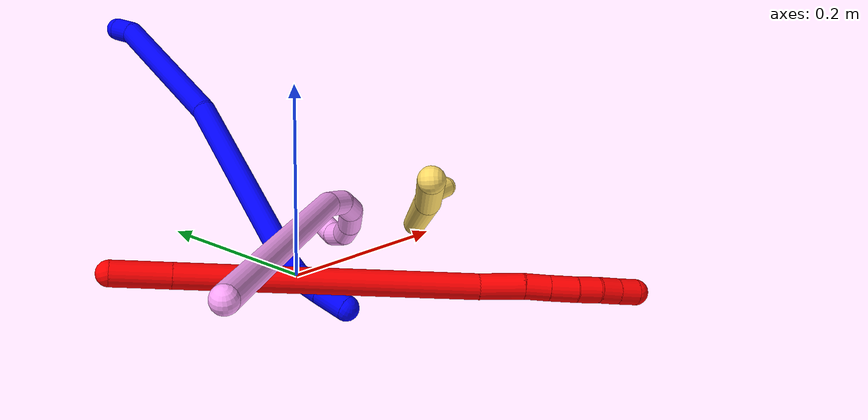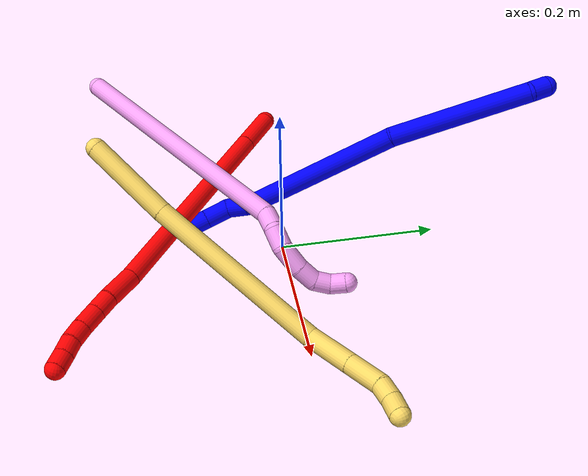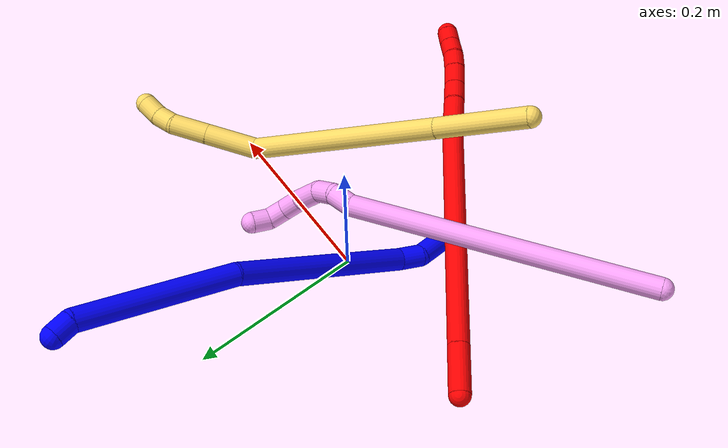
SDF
<sdf version="1.7">
 <world name="default">
  <model name="photoneo_s_sensor">
   <static>1</static>
   <pose>0 0 2 1.57079 1.57079 3.14159</pose>
   <link name="link">
    <inertial><mass>0.1</mass></inertial>
    <sensor name="sensor" type="depth">
     <update_rate>30</update_rate>
     <camera>
      <horizontal_fov>1.22</horizontal_fov>
      <image><width>1920</width><height>1200</height><format>B8G8R8</format></image>
      <clip><near>0.1</near><far>4</far></clip>
      <depth_camera><output>points</output></depth_camera>
     </camera>
     <plugin name="camera_plugin" filename="libgazebo_ros_depth_camera.so">
      <baseline>0.2</baseline>
      <alwaysOn>1</alwaysOn>
      <updateRate>0.0</updateRate>
      <cameraName>camera_ir</cameraName>
      <imageTopicName>/camera/color/image_raw</imageTopicName>
      <cameraInfoTopicName>/camera/color/camera_info</cameraInfoTopicName>
      <depthImageTopicName>/camera/depth/image_raw</depthImageTopicName>
      <depthImageCameraInfoTopicName>/camera/depth/camera_info</depthImageCameraInfoTopicName>
      <pointCloudTopicName>/camera/depth/points</pointCloudTopicName>
      <frameName>fr_optical</frameName>
      <pointCloudCutoff>0.1</pointCloudCutoff>
      <pointCloudCutoffMax>2.0</pointCloudCutoffMax>
      <distortionK1>0</distortionK1>
      <distortionK2>0</distortionK2>
      <distortionK3>0</distortionK3>
      <distortionT1>0</distortionT1>
      <distortionT2>0</distortionT2>
      <CxPrime>0</CxPrime>
      <Cx>0</Cx>
      <Cy>0</Cy>
      <focalLength>0</focalLength>
      <hackBaseline>0</hackBaseline>
     </plugin>
    </sensor>
   </link>
  </model>
  <model name="bin">
   <static>1</static>
   <link name="bottom">
    <collision name="collision-bottom">
     <pose>0 0 -0.01 0 -0 0</pose>
     <geometry><box><size>0.8 0.6 0.02</size></box></geometry>
     <surface>
      <friction><ode><mu>100</mu><mu2>100</mu2></ode></friction>
      <contact><collide_bitmask>65535</collide_bitmask></contact>
     </surface>
    </collision>
   </link>
   <link name="west_wall">
    <collision name="collision-west_wall">
     <pose>-0.41 0 0.1 0 -0 0</pose>
     <geometry><box><size>0.02 0.6 0.2</size></box></geometry>
     <surface>
      <friction><ode><mu>100</mu><mu2>100</mu2></ode></friction>
      <contact><collide_bitmask>65535</collide_bitmask></contact>
     </surface>
    </collision>
   </link>
   <link name="east_wall">
    <collision name="collision-east_wall">
     <pose>0.41 0 0.1 0 -0 0</pose>
     <geometry><box><size>0.02 0.6 0.2</size></box></geometry>
     <surface>
      <friction><ode><mu>100</mu><mu2>100</mu2></ode></friction>
      <contact><collide_bitmask>65535</collide_bitmask></contact>
     </surface>
    </collision>
   </link>
   <link name="south_wall">
    <collision name="collision-south_wall">
     <pose>0 -0.31 0.1 0 -0 0</pose>
     <geometry><box><size>0.8 0.02 0.2</size></box></geometry>
     <surface>
      <friction><ode><mu>100</mu><mu2>100</mu2></ode></friction>
      <contact><collide_bitmask>65535</collide_bitmask></contact>
     </surface>
    </collision>
   </link>
   <link name="north_wall">
    <collision name="collision-north_wall">
     <pose>0 0.31 0.1 0 -0 0</pose>
     <geometry><box><size>0.8 0.02 0.2</size></box></geometry>
     <surface>
      <friction><ode><mu>100</mu><mu2>100</mu2></ode></friction>
      <contact><collide_bitmask>65535</collide_bitmask></contact>
     </surface>
    </collision>
   </link>
  </model>
  <model name="1">
   <static>0</static>
   <link name="1">
    <collision name="collision-cylinder-e_1_1_4">
     <pose>-0.005863 -0.007229 -0.005889 2.25435 -0.561339 -1.09056</pose>
     <geometry><cylinder><radius>0.0125</radius><length>0.022029</length></cylinder></geometry>
     <surface>
      <friction><ode><mu>1.16</mu><mu2>1.16</mu2><slip1>0</slip1><slip2>0</slip2></ode></friction>
      <contact><ode><kp>1e+06</kp><kd>1</kd><max_vel>0</max_vel><min_depth>0.001</min_depth></ode></contact>
     </surface>
    </collision>
    <visual name="visual-cylinder-e_1_1_4">
     <pose>-0.005863 -0.007229 -0.005889 2.25435 -0.561339 -1.09056</pose>
     <geometry><cylinder><radius>0.0125</radius><length>0.022029</length></cylinder></geometry>
     <material><ambient>0 0 1 1</ambient></material>
    </visual>
    <collision name="collision-cylinder-e_2_4_5">
     <pose>-0.0304 -0.094036 -0.043164 1.94648 -0.214925 -0.314412</pose>
     <geometry><cylinder><radius>0.0125</radius><length>0.175115</length></cylinder></geometry>
     <surface>
      <friction><ode><mu>1.16</mu><mu2>1.16</mu2><slip1>0</slip1><slip2>0</slip2></ode></friction>
      <contact><ode><kp>1e+06</kp><kd>1</kd><max_vel>0</max_vel><min_depth>0.001</min_depth></ode></contact>
     </surface>
    </collision>
    <visual name="visual-cylinder-e_2_4_5">
     <pose>-0.0304 -0.094036 -0.043164 1.94648 -0.214925 -0.314412</pose>
     <geometry><cylinder><radius>0.0125</radius><length>0.175115</length></cylinder></geometry>
     <material><ambient>0 0 1 1</ambient></material>
    </visual>
    <collision name="collision-cylinder-e_3_5_6">
     <pose>-0.066142 -0.277912 -0.091804 1.73474 -0.16007 -0.18857</pose>
     <geometry><cylinder><radius>0.0125</radius><length>0.214171</length></cylinder></geometry>
     <surface>
      <friction><ode><mu>1.16</mu><mu2>1.16</mu2><slip1>0</slip1><slip2>0</slip2></ode></friction>
      <contact><ode><kp>1e+06</kp><kd>1</kd><max_vel>0</max_vel><min_depth>0.001</min_depth></ode></contact>
     </surface>
    </collision>
    <visual name="visual-cylinder-e_3_5_6">
     <pose>-0.066142 -0.277912 -0.091804 1.73474 -0.16007 -0.18857</pose>
     <geometry><cylinder><radius>0.0125</radius><length>0.214171</length></cylinder></geometry>
     <material><ambient>0 0 1 1</ambient></material>
    </visual>
    <collision name="collision-cylinder-e_4_6_7">
     <pose>-0.083749 -0.394369 -0.115076 2.0304 -0.039717 -0.063961</pose>
     <geometry><cylinder><radius>0.0125</radius><length>0.027154</length></cylinder></geometry>
     <surface>
      <friction><ode><mu>1.16</mu><mu2>1.16</mu2><slip1>0</slip1><slip2>0</slip2></ode></friction>
      <contact><ode><kp>1e+06</kp><kd>1</kd><max_vel>0</max_vel><min_depth>0.001</min_depth></ode></contact>
     </surface>
    </collision>
    <visual name="visual-cylinder-e_4_6_7">
     <pose>-0.083749 -0.394369 -0.115076 2.0304 -0.039717 -0.063961</pose>
     <geometry><cylinder><radius>0.0125</radius><length>0.027154</length></cylinder></geometry>
     <material><ambient>0 0 1 1</ambient></material>
    </visual>
    <collision name="collision-cylinder-e_5_7_8">
     <pose>-0.091835 -0.419054 -0.126596 1.98468 -0.504066 -0.751284</pose>
     <geometry><cylinder><radius>0.0125</radius><length>0.03125</length></cylinder></geometry>
     <surface>
      <friction><ode><mu>1.16</mu><mu2>1.16</mu2><slip1>0</slip1><slip2>0</slip2></ode></friction>
      <contact><ode><kp>1e+06</kp><kd>1</kd><max_vel>0</max_vel><min_depth>0.001</min_depth></ode></contact>
     </surface>
    </collision>
    <visual name="visual-cylinder-e_5_7_8">
     <pose>-0.091835 -0.419054 -0.126596 1.98468 -0.504066 -0.751284</pose>
     <geometry><cylinder><radius>0.0125</radius><length>0.03125</length></cylinder></geometry>
     <material><ambient>0 0 1 1</ambient></material>
    </visual>
    <collision name="collision-cylinder-e_6_8_2">
     <pose>-0.107004 -0.443444 -0.137612 2.00585 -0.527615 -0.800992</pose>
     <geometry><cylinder><radius>0.0125</radius><length>0.030282</length></cylinder></geometry>
     <surface>
      <friction><ode><mu>1.16</mu><mu2>1.16</mu2><slip1>0</slip1><slip2>0</slip2></ode></friction>
      <contact><ode><kp>1e+06</kp><kd>1</kd><max_vel>0</max_vel><min_depth>0.001</min_depth></ode></contact>
     </surface>
    </collision>
    <visual name="visual-cylinder-e_6_8_2">
     <pose>-0.107004 -0.443444 -0.137612 2.00585 -0.527615 -0.800992</pose>
     <geometry><cylinder><radius>0.0125</radius><length>0.030282</length></cylinder></geometry>
     <material><ambient>0 0 1 1</ambient></material>
    </visual>
    <collision name="collision-sphere-2">
     <pose>-0.114627 -0.455307 -0.143126 0 -0 0</pose>
     <geometry><sphere><radius>0.0125</radius></sphere></geometry>
     <surface>
      <friction><ode><mu>1.16</mu><mu2>1.16</mu2><slip1>0</slip1><slip2>0</slip2></ode></friction>
      <contact><ode><kp>1e+06</kp><kd>1</kd><max_vel>0</max_vel><min_depth>0.001</min_depth></ode></contact>
     </surface>
    </collision>
    <visual name="visual-sphere-2">
     <pose>-0.114627 -0.455307 -0.143126 0 -0 0</pose>
     <geometry><sphere><radius>0.0125</radius></sphere></geometry>
     <material><ambient>0 0 1 1</ambient></material>
    </visual>
    <collision name="collision-sphere-4">
     <pose>-0.011726 -0.014459 -0.011777 0 -0 0</pose>
     <geometry><sphere><radius>0.0125</radius></sphere></geometry>
     <surface>
      <friction><ode><mu>1.16</mu><mu2>1.16</mu2><slip1>0</slip1><slip2>0</slip2></ode></friction>
      <contact><ode><kp>1e+06</kp><kd>1</kd><max_vel>0</max_vel><min_depth>0.001</min_depth></ode></contact>
     </surface>
    </collision>
    <visual name="visual-sphere-4">
     <pose>-0.011726 -0.014459 -0.011777 0 -0 0</pose>
     <geometry><sphere><radius>0.0125</radius></sphere></geometry>
     <material><ambient>0 0 1 1</ambient></material>
    </visual>
    <collision name="collision-sphere-1">
     <geometry><sphere><radius>0.0125</radius></sphere></geometry>
     <surface>
      <friction><ode><mu>1.16</mu><mu2>1.16</mu2><slip1>0</slip1><slip2>0</slip2></ode></friction>
      <contact><ode><kp>1e+06</kp><kd>1</kd><max_vel>0</max_vel><min_depth>0.001</min_depth></ode></contact>
     </surface>
    </collision>
    <visual name="visual-sphere-1">
     <geometry><sphere><radius>0.0125</radius></sphere></geometry>
     <material><ambient>0 0 1 1</ambient></material>
    </visual>
    <collision name="collision-sphere-8">
     <pose>-0.099381 -0.43158 -0.132099 0 -0 0</pose>
     <geometry><sphere><radius>0.0125</radius></sphere></geometry>
     <surface>
      <friction><ode><mu>1.16</mu><mu2>1.16</mu2><slip1>0</slip1><slip2>0</slip2></ode></friction>
      <contact><ode><kp>1e+06</kp><kd>1</kd><max_vel>0</max_vel><min_depth>0.001</min_depth></ode></contact>
     </surface>
    </collision>
    <visual name="visual-sphere-8">
     <pose>-0.099381 -0.43158 -0.132099 0 -0 0</pose>
     <geometry><sphere><radius>0.0125</radius></sphere></geometry>
     <material><ambient>0 0 1 1</ambient></material>
    </visual>
    <collision name="collision-sphere-5">
     <pose>-0.049074 -0.173613 -0.07455 0 -0 0</pose>
     <geometry><sphere><radius>0.0125</radius></sphere></geometry>
     <surface>
      <friction><ode><mu>1.16</mu><mu2>1.16</mu2><slip1>0</slip1><slip2>0</slip2></ode></friction>
      <contact><ode><kp>1e+06</kp><kd>1</kd><max_vel>0</max_vel><min_depth>0.001</min_depth></ode></contact>
     </surface>
    </collision>
    <visual name="visual-sphere-5">
     <pose>-0.049074 -0.173613 -0.07455 0 -0 0</pose>
     <geometry><sphere><radius>0.0125</radius></sphere></geometry>
     <material><ambient>0 0 1 1</ambient></material>
    </visual>
    <collision name="collision-sphere-6">
     <pose>-0.08321 -0.382211 -0.109058 0 -0 0</pose>
     <geometry><sphere><radius>0.0125</radius></sphere></geometry>
     <surface>
      <friction><ode><mu>1.16</mu><mu2>1.16</mu2><slip1>0</slip1><slip2>0</slip2></ode></friction>
      <contact><ode><kp>1e+06</kp><kd>1</kd><max_vel>0</max_vel><min_depth>0.001</min_depth></ode></contact>
     </surface>
    </collision>
    <visual name="visual-sphere-6">
     <pose>-0.08321 -0.382211 -0.109058 0 -0 0</pose>
     <geometry><sphere><radius>0.0125</radius></sphere></geometry>
     <material><ambient>0 0 1 1</ambient></material>
    </visual>
    <collision name="collision-sphere-7">
     <pose>-0.084288 -0.406528 -0.121094 0 -0 0</pose>
     <geometry><sphere><radius>0.0125</radius></sphere></geometry>
     <surface>
      <friction><ode><mu>1.16</mu><mu2>1.16</mu2><slip1>0</slip1><slip2>0</slip2></ode></friction>
      <contact><ode><kp>1e+06</kp><kd>1</kd><max_vel>0</max_vel><min_depth>0.001</min_depth></ode></contact>
     </surface>
    </collision>
    <visual name="visual-sphere-7">
     <pose>-0.084288 -0.406528 -0.121094 0 -0 0</pose>
     <geometry><sphere><radius>0.0125</radius></sphere></geometry>
     <material><ambient>0 0 1 1</ambient></material>
    </visual>
    <inertial>
     <pose>-0.056005 -0.226758 -0.077196 0 -0 0</pose>
     <mass>0.5</mass>
     <inertia>
      <ixx>0.000927</ixx>
      <ixy>0</ixy>
      <ixz>0</ixz>
      <iyy>-0.000572</iyy>
      <iyz>0</iyz>
      <izz>0.00145</izz>
     </inertia>
    </inertial>
   </link>
   <pose>0.016631 0.323028 0.215282 2.43262 -0.161701 2.81336</pose>
  </model>
  <model name="2">
   <static>0</static>
   <link name="2">
    <collision name="collision-cylinder-e_1_1_4">
     <pose>0.008314 -0.025515 -0.009851 1.93926 0.295114 0.42684</pose>
     <geometry><cylinder><radius>0.0125</radius><length>0.057173</length></cylinder></geometry>
     <surface>
      <friction><ode><mu>1.16</mu><mu2>1.16</mu2><slip1>0</slip1><slip2>0</slip2></ode></friction>
      <contact><ode><kp>1e+06</kp><kd>1</kd><max_vel>0</max_vel><min_depth>0.001</min_depth></ode></contact>
     </surface>
    </collision>
    <visual name="visual-cylinder-e_1_1_4">
     <pose>0.008314 -0.025515 -0.009851 1.93926 0.295114 0.42684</pose>
     <geometry><cylinder><radius>0.0125</radius><length>0.057173</length></cylinder></geometry>
     <material><ambient>1 0 0 1</ambient></material>
    </visual>
    <collision name="collision-cylinder-e_2_4_5">
     <pose>0.058267 -0.178654 -0.068779 1.9379 0.295597 0.426923</pose>
     <geometry><cylinder><radius>0.0125</radius><length>0.285868</length></cylinder></geometry>
     <surface>
      <friction><ode><mu>1.16</mu><mu2>1.16</mu2><slip1>0</slip1><slip2>0</slip2></ode></friction>
      <contact><ode><kp>1e+06</kp><kd>1</kd><max_vel>0</max_vel><min_depth>0.001</min_depth></ode></contact>
     </surface>
    </collision>
    <visual name="visual-cylinder-e_2_4_5">
     <pose>0.058267 -0.178654 -0.068779 1.9379 0.295597 0.426923</pose>
     <geometry><cylinder><radius>0.0125</radius><length>0.285868</length></cylinder></geometry>
     <material><ambient>1 0 0 1</ambient></material>
    </visual>
    <collision name="collision-cylinder-e_3_5_6">
     <pose>0.10487 -0.326383 -0.124118 1.87278 0.231535 0.313454</pose>
     <geometry><cylinder><radius>0.0125</radius><length>0.043271</length></cylinder></geometry>
     <surface>
      <friction><ode><mu>1.16</mu><mu2>1.16</mu2><slip1>0</slip1><slip2>0</slip2></ode></friction>
      <contact><ode><kp>1e+06</kp><kd>1</kd><max_vel>0</max_vel><min_depth>0.001</min_depth></ode></contact>
     </surface>
    </collision>
    <visual name="visual-cylinder-e_3_5_6">
     <pose>0.10487 -0.326383 -0.124118 1.87278 0.231535 0.313454</pose>
     <geometry><cylinder><radius>0.0125</radius><length>0.043271</length></cylinder></geometry>
     <material><ambient>1 0 0 1</ambient></material>
    </visual>
    <collision name="collision-cylinder-e_4_6_7">
     <pose>0.112873 -0.357294 -0.134946 1.97052 0.253418 0.379598</pose>
     <geometry><cylinder><radius>0.0125</radius><length>0.024235</length></cylinder></geometry>
     <surface>
      <friction><ode><mu>1.16</mu><mu2>1.16</mu2><slip1>0</slip1><slip2>0</slip2></ode></friction>
      <contact><ode><kp>1e+06</kp><kd>1</kd><max_vel>0</max_vel><min_depth>0.001</min_depth></ode></contact>
     </surface>
    </collision>
    <visual name="visual-cylinder-e_4_6_7">
     <pose>0.112873 -0.357294 -0.134946 1.97052 0.253418 0.379598</pose>
     <geometry><cylinder><radius>0.0125</radius><length>0.024235</length></cylinder></geometry>
     <material><ambient>1 0 0 1</ambient></material>
    </visual>
    <collision name="collision-cylinder-e_5_7_8">
     <pose>0.119526 -0.380234 -0.144345 1.9499 0.270066 0.395495</pose>
     <geometry><cylinder><radius>0.0125</radius><length>0.027105</length></cylinder></geometry>
     <surface>
      <friction><ode><mu>1.16</mu><mu2>1.16</mu2><slip1>0</slip1><slip2>0</slip2></ode></friction>
      <contact><ode><kp>1e+06</kp><kd>1</kd><max_vel>0</max_vel><min_depth>0.001</min_depth></ode></contact>
     </surface>
    </collision>
    <visual name="visual-cylinder-e_5_7_8">
     <pose>0.119526 -0.380234 -0.144345 1.9499 0.270066 0.395495</pose>
     <geometry><cylinder><radius>0.0125</radius><length>0.027105</length></cylinder></geometry>
     <material><ambient>1 0 0 1</ambient></material>
    </visual>
    <collision name="collision-cylinder-e_6_8_9">
     <pose>0.126879 -0.402078 -0.152884 1.93539 0.345172 0.495819</pose>
     <geometry><cylinder><radius>0.0125</radius><length>0.022089</length></cylinder></geometry>
     <surface>
      <friction><ode><mu>1.16</mu><mu2>1.16</mu2><slip1>0</slip1><slip2>0</slip2></ode></friction>
      <contact><ode><kp>1e+06</kp><kd>1</kd><max_vel>0</max_vel><min_depth>0.001</min_depth></ode></contact>
     </surface>
    </collision>
    <visual name="visual-cylinder-e_6_8_9">
     <pose>0.126879 -0.402078 -0.152884 1.93539 0.345172 0.495819</pose>
     <geometry><cylinder><radius>0.0125</radius><length>0.022089</length></cylinder></geometry>
     <material><ambient>1 0 0 1</ambient></material>
    </visual>
    <collision name="collision-cylinder-e_7_9_10">
     <pose>0.135239 -0.419877 -0.160529 2.02386 0.474648 0.738121</pose>
     <geometry><cylinder><radius>0.0125</radius><length>0.020232</length></cylinder></geometry>
     <surface>
      <friction><ode><mu>1.16</mu><mu2>1.16</mu2><slip1>0</slip1><slip2>0</slip2></ode></friction>
      <contact><ode><kp>1e+06</kp><kd>1</kd><max_vel>0</max_vel><min_depth>0.001</min_depth></ode></contact>
     </surface>
    </collision>
    <visual name="visual-cylinder-e_7_9_10">
     <pose>0.135239 -0.419877 -0.160529 2.02386 0.474648 0.738121</pose>
     <geometry><cylinder><radius>0.0125</radius><length>0.020232</length></cylinder></geometry>
     <material><ambient>1 0 0 1</ambient></material>
    </visual>
    <collision name="collision-cylinder-e_8_10_2">
     <pose>0.144195 -0.436216 -0.168136 1.98931 0.447463 0.673778</pose>
     <geometry><cylinder><radius>0.0125</radius><length>0.020027</length></cylinder></geometry>
     <surface>
      <friction><ode><mu>1.16</mu><mu2>1.16</mu2><slip1>0</slip1><slip2>0</slip2></ode></friction>
      <contact><ode><kp>1e+06</kp><kd>1</kd><max_vel>0</max_vel><min_depth>0.001</min_depth></ode></contact>
     </surface>
    </collision>
    <visual name="visual-cylinder-e_8_10_2">
     <pose>0.144195 -0.436216 -0.168136 1.98931 0.447463 0.673778</pose>
     <geometry><cylinder><radius>0.0125</radius><length>0.020027</length></cylinder></geometry>
     <material><ambient>1 0 0 1</ambient></material>
    </visual>
    <collision name="collision-sphere-2">
     <pose>0.148528 -0.444465 -0.171805 0 -0 0</pose>
     <geometry><sphere><radius>0.0125</radius></sphere></geometry>
     <surface>
      <friction><ode><mu>1.16</mu><mu2>1.16</mu2><slip1>0</slip1><slip2>0</slip2></ode></friction>
      <contact><ode><kp>1e+06</kp><kd>1</kd><max_vel>0</max_vel><min_depth>0.001</min_depth></ode></contact>
     </surface>
    </collision>
    <visual name="visual-sphere-2">
     <pose>0.148528 -0.444465 -0.171805 0 -0 0</pose>
     <geometry><sphere><radius>0.0125</radius></sphere></geometry>
     <material><ambient>1 0 0 1</ambient></material>
    </visual>
    <collision name="collision-sphere-10">
     <pose>0.139863 -0.427967 -0.164467 0 -0 0</pose>
     <geometry><sphere><radius>0.0125</radius></sphere></geometry>
     <surface>
      <friction><ode><mu>1.16</mu><mu2>1.16</mu2><slip1>0</slip1><slip2>0</slip2></ode></friction>
      <contact><ode><kp>1e+06</kp><kd>1</kd><max_vel>0</max_vel><min_depth>0.001</min_depth></ode></contact>
     </surface>
    </collision>
    <visual name="visual-sphere-10">
     <pose>0.139863 -0.427967 -0.164467 0 -0 0</pose>
     <geometry><sphere><radius>0.0125</radius></sphere></geometry>
     <material><ambient>1 0 0 1</ambient></material>
    </visual>
    <collision name="collision-sphere-9">
     <pose>0.130616 -0.411788 -0.15659 0 -0 0</pose>
     <geometry><sphere><radius>0.0125</radius></sphere></geometry>
     <surface>
      <friction><ode><mu>1.16</mu><mu2>1.16</mu2><slip1>0</slip1><slip2>0</slip2></ode></friction>
      <contact><ode><kp>1e+06</kp><kd>1</kd><max_vel>0</max_vel><min_depth>0.001</min_depth></ode></contact>
     </surface>
    </collision>
    <visual name="visual-sphere-9">
     <pose>0.130616 -0.411788 -0.15659 0 -0 0</pose>
     <geometry><sphere><radius>0.0125</radius></sphere></geometry>
     <material><ambient>1 0 0 1</ambient></material>
    </visual>
    <collision name="collision-sphere-4">
     <pose>0.016629 -0.05103 -0.019703 0 -0 0</pose>
     <geometry><sphere><radius>0.0125</radius></sphere></geometry>
     <surface>
      <friction><ode><mu>1.16</mu><mu2>1.16</mu2><slip1>0</slip1><slip2>0</slip2></ode></friction>
      <contact><ode><kp>1e+06</kp><kd>1</kd><max_vel>0</max_vel><min_depth>0.001</min_depth></ode></contact>
     </surface>
    </collision>
    <visual name="visual-sphere-4">
     <pose>0.016629 -0.05103 -0.019703 0 -0 0</pose>
     <geometry><sphere><radius>0.0125</radius></sphere></geometry>
     <material><ambient>1 0 0 1</ambient></material>
    </visual>
    <collision name="collision-sphere-1">
     <geometry><sphere><radius>0.0125</radius></sphere></geometry>
     <surface>
      <friction><ode><mu>1.16</mu><mu2>1.16</mu2><slip1>0</slip1><slip2>0</slip2></ode></friction>
      <contact><ode><kp>1e+06</kp><kd>1</kd><max_vel>0</max_vel><min_depth>0.001</min_depth></ode></contact>
     </surface>
    </collision>
    <visual name="visual-sphere-1">
     <geometry><sphere><radius>0.0125</radius></sphere></geometry>
     <material><ambient>1 0 0 1</ambient></material>
    </visual>
    <collision name="collision-sphere-8">
     <pose>0.123142 -0.392368 -0.149178 0 -0 0</pose>
     <geometry><sphere><radius>0.0125</radius></sphere></geometry>
     <surface>
      <friction><ode><mu>1.16</mu><mu2>1.16</mu2><slip1>0</slip1><slip2>0</slip2></ode></friction>
      <contact><ode><kp>1e+06</kp><kd>1</kd><max_vel>0</max_vel><min_depth>0.001</min_depth></ode></contact>
     </surface>
    </collision>
    <visual name="visual-sphere-8">
     <pose>0.123142 -0.392368 -0.149178 0 -0 0</pose>
     <geometry><sphere><radius>0.0125</radius></sphere></geometry>
     <material><ambient>1 0 0 1</ambient></material>
    </visual>
    <collision name="collision-sphere-5">
     <pose>0.099905 -0.306278 -0.117855 0 -0 0</pose>
     <geometry><sphere><radius>0.0125</radius></sphere></geometry>
     <surface>
      <friction><ode><mu>1.16</mu><mu2>1.16</mu2><slip1>0</slip1><slip2>0</slip2></ode></friction>
      <contact><ode><kp>1e+06</kp><kd>1</kd><max_vel>0</max_vel><min_depth>0.001</min_depth></ode></contact>
     </surface>
    </collision>
    <visual name="visual-sphere-5">
     <pose>0.099905 -0.306278 -0.117855 0 -0 0</pose>
     <geometry><sphere><radius>0.0125</radius></sphere></geometry>
     <material><ambient>1 0 0 1</ambient></material>
    </visual>
    <collision name="collision-sphere-6">
     <pose>0.109835 -0.346489 -0.130381 0 -0 0</pose>
     <geometry><sphere><radius>0.0125</radius></sphere></geometry>
     <surface>
      <friction><ode><mu>1.16</mu><mu2>1.16</mu2><slip1>0</slip1><slip2>0</slip2></ode></friction>
      <contact><ode><kp>1e+06</kp><kd>1</kd><max_vel>0</max_vel><min_depth>0.001</min_depth></ode></contact>
     </surface>
    </collision>
    <visual name="visual-sphere-6">
     <pose>0.109835 -0.346489 -0.130381 0 -0 0</pose>
     <geometry><sphere><radius>0.0125</radius></sphere></geometry>
     <material><ambient>1 0 0 1</ambient></material>
    </visual>
    <collision name="collision-sphere-7">
     <pose>0.115911 -0.3681 -0.139511 0 -0 0</pose>
     <geometry><sphere><radius>0.0125</radius></sphere></geometry>
     <surface>
      <friction><ode><mu>1.16</mu><mu2>1.16</mu2><slip1>0</slip1><slip2>0</slip2></ode></friction>
      <contact><ode><kp>1e+06</kp><kd>1</kd><max_vel>0</max_vel><min_depth>0.001</min_depth></ode></contact>
     </surface>
    </collision>
    <visual name="visual-sphere-7">
     <pose>0.115911 -0.3681 -0.139511 0 -0 0</pose>
     <geometry><sphere><radius>0.0125</radius></sphere></geometry>
     <material><ambient>1 0 0 1</ambient></material>
    </visual>
    <inertial>
     <pose>0.072143 -0.223462 -0.085541 0 -0 0</pose>
     <mass>0.5</mass>
     <inertia>
      <ixx>0.002537</ixx>
      <ixy>0</ixy>
      <ixz>0</ixz>
      <iyy>0.000328</iyy>
      <iyz>0</iyz>
      <izz>0.001186</izz>
     </inertia>
    </inertial>
   </link>
   <pose>-0.217229 0.013888 0.055869 -0.315361 0.122065 0.622601</pose>
  </model>
  <model name="4">
   <static>0</static>
   <link name="4">
    <collision name="collision-cylinder-e_1_1_4">
     <pose>0.13562 0.074704 0.080033 -0.750976 0.891646 -0.372413</pose>
     <geometry><cylinder><radius>0.0125</radius><length>0.348589</length></cylinder></geometry>
     <surface>
      <friction><ode><mu>1.16</mu><mu2>1.16</mu2><slip1>0</slip1><slip2>0</slip2></ode></friction>
      <contact><ode><kp>1e+06</kp><kd>1</kd><max_vel>0</max_vel><min_depth>0.001</min_depth></ode></contact>
     </surface>
    </collision>
    <visual name="visual-cylinder-e_1_1_4">
     <pose>0.13562 0.074704 0.080033 -0.750976 0.891646 -0.372413</pose>
     <geometry><cylinder><radius>0.0125</radius><length>0.348589</length></cylinder></geometry>
     <material><ambient>1 0.65098 0.996078 1</ambient></material>
    </visual>
    <collision name="collision-cylinder-e_2_4_5">
     <pose>0.277809 0.158456 0.166396 -0.960266 0.536628 -0.284437</pose>
     <geometry><cylinder><radius>0.0125</radius><length>0.025698</length></cylinder></geometry>
     <surface>
      <friction><ode><mu>1.16</mu><mu2>1.16</mu2><slip1>0</slip1><slip2>0</slip2></ode></friction>
      <contact><ode><kp>1e+06</kp><kd>1</kd><max_vel>0</max_vel><min_depth>0.001</min_depth></ode></contact>
     </surface>
    </collision>
    <visual name="visual-cylinder-e_2_4_5">
     <pose>0.277809 0.158456 0.166396 -0.960266 0.536628 -0.284437</pose>
     <geometry><cylinder><radius>0.0125</radius><length>0.025698</length></cylinder></geometry>
     <material><ambient>1 0.65098 0.996078 1</ambient></material>
    </visual>
    <collision name="collision-cylinder-e_3_5_6">
     <pose>0.288992 0.173317 0.183292 -0.502955 0.365495 -0.09489</pose>
     <geometry><cylinder><radius>0.0125</radius><length>0.025823</length></cylinder></geometry>
     <surface>
      <friction><ode><mu>1.16</mu><mu2>1.16</mu2><slip1>0</slip1><slip2>0</slip2></ode></friction>
      <contact><ode><kp>1e+06</kp><kd>1</kd><max_vel>0</max_vel><min_depth>0.001</min_depth></ode></contact>
     </surface>
    </collision>
    <visual name="visual-cylinder-e_3_5_6">
     <pose>0.288992 0.173317 0.183292 -0.502955 0.365495 -0.09489</pose>
     <geometry><cylinder><radius>0.0125</radius><length>0.025823</length></cylinder></geometry>
     <material><ambient>1 0.65098 0.996078 1</ambient></material>
    </visual>
    <collision name="collision-cylinder-e_4_6_7">
     <pose>0.300106 0.179419 0.208887 -0.019255 0.408088 -0.003984</pose>
     <geometry><cylinder><radius>0.0125</radius><length>0.032753</length></cylinder></geometry>
     <surface>
      <friction><ode><mu>1.16</mu><mu2>1.16</mu2><slip1>0</slip1><slip2>0</slip2></ode></friction>
      <contact><ode><kp>1e+06</kp><kd>1</kd><max_vel>0</max_vel><min_depth>0.001</min_depth></ode></contact>
     </surface>
    </collision>
    <visual name="visual-cylinder-e_4_6_7">
     <pose>0.300106 0.179419 0.208887 -0.019255 0.408088 -0.003984</pose>
     <geometry><cylinder><radius>0.0125</radius><length>0.032753</length></cylinder></geometry>
     <material><ambient>1 0.65098 0.996078 1</ambient></material>
    </visual>
    <collision name="collision-cylinder-e_5_7_8">
     <pose>0.312455 0.177883 0.234518 0.170469 0.498017 0.043446</pose>
     <geometry><cylinder><radius>0.0125</radius><length>0.024491</length></cylinder></geometry>
     <surface>
      <friction><ode><mu>1.16</mu><mu2>1.16</mu2><slip1>0</slip1><slip2>0</slip2></ode></friction>
      <contact><ode><kp>1e+06</kp><kd>1</kd><max_vel>0</max_vel><min_depth>0.001</min_depth></ode></contact>
     </surface>
    </collision>
    <visual name="visual-cylinder-e_5_7_8">
     <pose>0.312455 0.177883 0.234518 0.170469 0.498017 0.043446</pose>
     <geometry><cylinder><radius>0.0125</radius><length>0.024491</length></cylinder></geometry>
     <material><ambient>1 0.65098 0.996078 1</ambient></material>
    </visual>
    <collision name="collision-cylinder-e_6_8_9">
     <pose>0.326394 0.172131 0.250862 0.599893 0.860565 0.28201</pose>
     <geometry><cylinder><radius>0.0125</radius><length>0.021337</length></cylinder></geometry>
     <surface>
      <friction><ode><mu>1.16</mu><mu2>1.16</mu2><slip1>0</slip1><slip2>0</slip2></ode></friction>
      <contact><ode><kp>1e+06</kp><kd>1</kd><max_vel>0</max_vel><min_depth>0.001</min_depth></ode></contact>
     </surface>
    </collision>
    <visual name="visual-cylinder-e_6_8_9">
     <pose>0.326394 0.172131 0.250862 0.599893 0.860565 0.28201</pose>
     <geometry><cylinder><radius>0.0125</radius><length>0.021337</length></cylinder></geometry>
     <material><ambient>1 0.65098 0.996078 1</ambient></material>
    </visual>
    <collision name="collision-cylinder-e_7_9_2">
     <pose>0.344878 0.166222 0.25783 1.01668 1.35024 0.839195</pose>
     <geometry><cylinder><radius>0.0125</radius><length>0.021307</length></cylinder></geometry>
     <surface>
      <friction><ode><mu>1.16</mu><mu2>1.16</mu2><slip1>0</slip1><slip2>0</slip2></ode></friction>
      <contact><ode><kp>1e+06</kp><kd>1</kd><max_vel>0</max_vel><min_depth>0.001</min_depth></ode></contact>
     </surface>
    </collision>
    <visual name="visual-cylinder-e_7_9_2">
     <pose>0.344878 0.166222 0.25783 1.01668 1.35024 0.839195</pose>
     <geometry><cylinder><radius>0.0125</radius><length>0.021307</length></cylinder></geometry>
     <material><ambient>1 0.65098 0.996078 1</ambient></material>
    </visual>
    <collision name="collision-sphere-2">
     <pose>0.355274 0.16424 0.259056 0 -0 0</pose>
     <geometry><sphere><radius>0.0125</radius></sphere></geometry>
     <surface>
      <friction><ode><mu>1.16</mu><mu2>1.16</mu2><slip1>0</slip1><slip2>0</slip2></ode></friction>
      <contact><ode><kp>1e+06</kp><kd>1</kd><max_vel>0</max_vel><min_depth>0.001</min_depth></ode></contact>
     </surface>
    </collision>
    <visual name="visual-sphere-2">
     <pose>0.355274 0.16424 0.259056 0 -0 0</pose>
     <geometry><sphere><radius>0.0125</radius></sphere></geometry>
     <material><ambient>1 0.65098 0.996078 1</ambient></material>
    </visual>
    <collision name="collision-sphere-9">
     <pose>0.334483 0.168204 0.256603 0 -0 0</pose>
     <geometry><sphere><radius>0.0125</radius></sphere></geometry>
     <surface>
      <friction><ode><mu>1.16</mu><mu2>1.16</mu2><slip1>0</slip1><slip2>0</slip2></ode></friction>
      <contact><ode><kp>1e+06</kp><kd>1</kd><max_vel>0</max_vel><min_depth>0.001</min_depth></ode></contact>
     </surface>
    </collision>
    <visual name="visual-sphere-9">
     <pose>0.334483 0.168204 0.256603 0 -0 0</pose>
     <geometry><sphere><radius>0.0125</radius></sphere></geometry>
     <material><ambient>1 0.65098 0.996078 1</ambient></material>
    </visual>
    <collision name="collision-sphere-4">
     <pose>0.27124 0.149408 0.160065 0 -0 0</pose>
     <geometry><sphere><radius>0.0125</radius></sphere></geometry>
     <surface>
      <friction><ode><mu>1.16</mu><mu2>1.16</mu2><slip1>0</slip1><slip2>0</slip2></ode></friction>
      <contact><ode><kp>1e+06</kp><kd>1</kd><max_vel>0</max_vel><min_depth>0.001</min_depth></ode></contact>
     </surface>
    </collision>
    <visual name="visual-sphere-4">
     <pose>0.27124 0.149408 0.160065 0 -0 0</pose>
     <geometry><sphere><radius>0.0125</radius></sphere></geometry>
     <material><ambient>1 0.65098 0.996078 1</ambient></material>
    </visual>
    <collision name="collision-sphere-1">
     <geometry><sphere><radius>0.0125</radius></sphere></geometry>
     <surface>
      <friction><ode><mu>1.16</mu><mu2>1.16</mu2><slip1>0</slip1><slip2>0</slip2></ode></friction>
      <contact><ode><kp>1e+06</kp><kd>1</kd><max_vel>0</max_vel><min_depth>0.001</min_depth></ode></contact>
     </surface>
    </collision>
    <visual name="visual-sphere-1">
     <geometry><sphere><radius>0.0125</radius></sphere></geometry>
     <material><ambient>1 0.65098 0.996078 1</ambient></material>
    </visual>
    <collision name="collision-sphere-8">
     <pose>0.318305 0.176058 0.24512 0 -0 0</pose>
     <geometry><sphere><radius>0.0125</radius></sphere></geometry>
     <surface>
      <friction><ode><mu>1.16</mu><mu2>1.16</mu2><slip1>0</slip1><slip2>0</slip2></ode></friction>
      <contact><ode><kp>1e+06</kp><kd>1</kd><max_vel>0</max_vel><min_depth>0.001</min_depth></ode></contact>
     </surface>
    </collision>
    <visual name="visual-sphere-8">
     <pose>0.318305 0.176058 0.24512 0 -0 0</pose>
     <geometry><sphere><radius>0.0125</radius></sphere></geometry>
     <material><ambient>1 0.65098 0.996078 1</ambient></material>
    </visual>
    <collision name="collision-sphere-5">
     <pose>0.284378 0.167504 0.172727 0 -0 0</pose>
     <geometry><sphere><radius>0.0125</radius></sphere></geometry>
     <surface>
      <friction><ode><mu>1.16</mu><mu2>1.16</mu2><slip1>0</slip1><slip2>0</slip2></ode></friction>
      <contact><ode><kp>1e+06</kp><kd>1</kd><max_vel>0</max_vel><min_depth>0.001</min_depth></ode></contact>
     </surface>
    </collision>
    <visual name="visual-sphere-5">
     <pose>0.284378 0.167504 0.172727 0 -0 0</pose>
     <geometry><sphere><radius>0.0125</radius></sphere></geometry>
     <material><ambient>1 0.65098 0.996078 1</ambient></material>
    </visual>
    <collision name="collision-sphere-6">
     <pose>0.293607 0.179129 0.193858 0 -0 0</pose>
     <geometry><sphere><radius>0.0125</radius></sphere></geometry>
     <surface>
      <friction><ode><mu>1.16</mu><mu2>1.16</mu2><slip1>0</slip1><slip2>0</slip2></ode></friction>
      <contact><ode><kp>1e+06</kp><kd>1</kd><max_vel>0</max_vel><min_depth>0.001</min_depth></ode></contact>
     </surface>
    </collision>
    <visual name="visual-sphere-6">
     <pose>0.293607 0.179129 0.193858 0 -0 0</pose>
     <geometry><sphere><radius>0.0125</radius></sphere></geometry>
     <material><ambient>1 0.65098 0.996078 1</ambient></material>
    </visual>
    <collision name="collision-sphere-7">
     <pose>0.306605 0.179708 0.223916 0 -0 0</pose>
     <geometry><sphere><radius>0.0125</radius></sphere></geometry>
     <surface>
      <friction><ode><mu>1.16</mu><mu2>1.16</mu2><slip1>0</slip1><slip2>0</slip2></ode></friction>
      <contact><ode><kp>1e+06</kp><kd>1</kd><max_vel>0</max_vel><min_depth>0.001</min_depth></ode></contact>
     </surface>
    </collision>
    <visual name="visual-sphere-7">
     <pose>0.306605 0.179708 0.223916 0 -0 0</pose>
     <geometry><sphere><radius>0.0125</radius></sphere></geometry>
     <material><ambient>1 0.65098 0.996078 1</ambient></material>
    </visual>
    <inertial>
     <pose>0.187344 0.104073 0.120679 0 -0 0</pose>
     <mass>0.5</mass>
     <inertia>
      <ixx>0.001302</ixx>
      <ixy>0</ixy>
      <ixz>0</ixz>
      <iyy>0.002313</iyy>
      <iyz>0</iyz>
      <izz>-0.004265</izz>
     </inertia>
    </inertial>
   </link>
   <pose>-0.266804 -0.213515 0.10822 2.98673 -0.357267 1.10084</pose>
  </model>
  <model name="5">
   <static>0</static>
   <link name="5">
    <collision name="collision-cylinder-e_1_1_4">
     <pose>0.051178 0.021163 -0.011749 -2.07761 1.12901 -1.64384</pose>
     <geometry><cylinder><radius>0.0125</radius><length>0.113227</length></cylinder></geometry>
     <surface>
      <friction><ode><mu>1.16</mu><mu2>1.16</mu2><slip1>0</slip1><slip2>0</slip2></ode></friction>
      <contact><ode><kp>1e+06</kp><kd>1</kd><max_vel>0</max_vel><min_depth>0.001</min_depth></ode></contact>
     </surface>
    </collision>
    <visual name="visual-cylinder-e_1_1_4">
     <pose>0.051178 0.021163 -0.011749 -2.07761 1.12901 -1.64384</pose>
     <geometry><cylinder><radius>0.0125</radius><length>0.113227</length></cylinder></geometry>
     <material><ambient>1 0.858824 0.4 1</ambient></material>
    </visual>
    <collision name="collision-cylinder-e_2_4_5">
     <pose>0.203442 0.091897 -0.051592 -2.0864 1.05752 -1.57347</pose>
     <geometry><cylinder><radius>0.0125</radius><length>0.232078</length></cylinder></geometry>
     <surface>
      <friction><ode><mu>1.16</mu><mu2>1.16</mu2><slip1>0</slip1><slip2>0</slip2></ode></friction>
      <contact><ode><kp>1e+06</kp><kd>1</kd><max_vel>0</max_vel><min_depth>0.001</min_depth></ode></contact>
     </surface>
    </collision>
    <visual name="visual-cylinder-e_2_4_5">
     <pose>0.203442 0.091897 -0.051592 -2.0864 1.05752 -1.57347</pose>
     <geometry><cylinder><radius>0.0125</radius><length>0.232078</length></cylinder></geometry>
     <material><ambient>1 0.858824 0.4 1</ambient></material>
    </visual>
    <collision name="collision-cylinder-e_3_5_6">
     <pose>0.324894 0.165232 -0.080473 -1.60391 0.70826 -0.730076</pose>
     <geometry><cylinder><radius>0.0125</radius><length>0.062613</length></cylinder></geometry>
     <surface>
      <friction><ode><mu>1.16</mu><mu2>1.16</mu2><slip1>0</slip1><slip2>0</slip2></ode></friction>
      <contact><ode><kp>1e+06</kp><kd>1</kd><max_vel>0</max_vel><min_depth>0.001</min_depth></ode></contact>
     </surface>
    </collision>
    <visual name="visual-cylinder-e_3_5_6">
     <pose>0.324894 0.165232 -0.080473 -1.60391 0.70826 -0.730076</pose>
     <geometry><cylinder><radius>0.0125</radius><length>0.062613</length></cylinder></geometry>
     <material><ambient>1 0.858824 0.4 1</ambient></material>
    </visual>
    <collision name="collision-cylinder-e_4_6_7">
     <pose>0.359893 0.20611 -0.081824 -1.60367 0.707198 -0.728831</pose>
     <geometry><cylinder><radius>0.0125</radius><length>0.04505</length></cylinder></geometry>
     <surface>
      <friction><ode><mu>1.16</mu><mu2>1.16</mu2><slip1>0</slip1><slip2>0</slip2></ode></friction>
      <contact><ode><kp>1e+06</kp><kd>1</kd><max_vel>0</max_vel><min_depth>0.001</min_depth></ode></contact>
     </surface>
    </collision>
    <visual name="visual-cylinder-e_4_6_7">
     <pose>0.359893 0.20611 -0.081824 -1.60367 0.707198 -0.728831</pose>
     <geometry><cylinder><radius>0.0125</radius><length>0.04505</length></cylinder></geometry>
     <material><ambient>1 0.858824 0.4 1</ambient></material>
    </visual>
    <collision name="collision-cylinder-e_5_7_8">
     <pose>0.383064 0.230194 -0.079511 -1.1796 0.84729 -0.586229</pose>
     <geometry><cylinder><radius>0.0125</radius><length>0.022779</length></cylinder></geometry>
     <surface>
      <friction><ode><mu>1.16</mu><mu2>1.16</mu2><slip1>0</slip1><slip2>0</slip2></ode></friction>
      <contact><ode><kp>1e+06</kp><kd>1</kd><max_vel>0</max_vel><min_depth>0.001</min_depth></ode></contact>
     </surface>
    </collision>
    <visual name="visual-cylinder-e_5_7_8">
     <pose>0.383064 0.230194 -0.079511 -1.1796 0.84729 -0.586229</pose>
     <geometry><cylinder><radius>0.0125</radius><length>0.022779</length></cylinder></geometry>
     <material><ambient>1 0.858824 0.4 1</ambient></material>
    </visual>
    <collision name="collision-cylinder-e_6_8_2">
     <pose>0.399012 0.245147 -0.071305 -0.981866 0.657478 -0.360749</pose>
     <geometry><cylinder><radius>0.0125</radius><length>0.024254</length></cylinder></geometry>
     <surface>
      <friction><ode><mu>1.16</mu><mu2>1.16</mu2><slip1>0</slip1><slip2>0</slip2></ode></friction>
      <contact><ode><kp>1e+06</kp><kd>1</kd><max_vel>0</max_vel><min_depth>0.001</min_depth></ode></contact>
     </surface>
    </collision>
    <visual name="visual-cylinder-e_6_8_2">
     <pose>0.399012 0.245147 -0.071305 -0.981866 0.657478 -0.360749</pose>
     <geometry><cylinder><radius>0.0125</radius><length>0.024254</length></cylinder></geometry>
     <material><ambient>1 0.858824 0.4 1</ambient></material>
    </visual>
    <collision name="collision-sphere-2">
     <pose>0.406423 0.253128 -0.065973 0 -0 0</pose>
     <geometry><sphere><radius>0.0125</radius></sphere></geometry>
     <surface>
      <friction><ode><mu>1.16</mu><mu2>1.16</mu2><slip1>0</slip1><slip2>0</slip2></ode></friction>
      <contact><ode><kp>1e+06</kp><kd>1</kd><max_vel>0</max_vel><min_depth>0.001</min_depth></ode></contact>
     </surface>
    </collision>
    <visual name="visual-sphere-2">
     <pose>0.406423 0.253128 -0.065973 0 -0 0</pose>
     <geometry><sphere><radius>0.0125</radius></sphere></geometry>
     <material><ambient>1 0.858824 0.4 1</ambient></material>
    </visual>
    <collision name="collision-sphere-4">
     <pose>0.102355 0.042325 -0.023498 0 -0 0</pose>
     <geometry><sphere><radius>0.0125</radius></sphere></geometry>
     <surface>
      <friction><ode><mu>1.16</mu><mu2>1.16</mu2><slip1>0</slip1><slip2>0</slip2></ode></friction>
      <contact><ode><kp>1e+06</kp><kd>1</kd><max_vel>0</max_vel><min_depth>0.001</min_depth></ode></contact>
     </surface>
    </collision>
    <visual name="visual-sphere-4">
     <pose>0.102355 0.042325 -0.023498 0 -0 0</pose>
     <geometry><sphere><radius>0.0125</radius></sphere></geometry>
     <material><ambient>1 0.858824 0.4 1</ambient></material>
    </visual>
    <collision name="collision-sphere-1">
     <geometry><sphere><radius>0.0125</radius></sphere></geometry>
     <surface>
      <friction><ode><mu>1.16</mu><mu2>1.16</mu2><slip1>0</slip1><slip2>0</slip2></ode></friction>
      <contact><ode><kp>1e+06</kp><kd>1</kd><max_vel>0</max_vel><min_depth>0.001</min_depth></ode></contact>
     </surface>
    </collision>
    <visual name="visual-sphere-1">
     <geometry><sphere><radius>0.0125</radius></sphere></geometry>
     <material><ambient>1 0.858824 0.4 1</ambient></material>
    </visual>
    <collision name="collision-sphere-8">
     <pose>0.3916 0.237165 -0.076637 0 -0 0</pose>
     <geometry><sphere><radius>0.0125</radius></sphere></geometry>
     <surface>
      <friction><ode><mu>1.16</mu><mu2>1.16</mu2><slip1>0</slip1><slip2>0</slip2></ode></friction>
      <contact><ode><kp>1e+06</kp><kd>1</kd><max_vel>0</max_vel><min_depth>0.001</min_depth></ode></contact>
     </surface>
    </collision>
    <visual name="visual-sphere-8">
     <pose>0.3916 0.237165 -0.076637 0 -0 0</pose>
     <geometry><sphere><radius>0.0125</radius></sphere></geometry>
     <material><ambient>1 0.858824 0.4 1</ambient></material>
    </visual>
    <collision name="collision-sphere-5">
     <pose>0.304529 0.141468 -0.079686 0 -0 0</pose>
     <geometry><sphere><radius>0.0125</radius></sphere></geometry>
     <surface>
      <friction><ode><mu>1.16</mu><mu2>1.16</mu2><slip1>0</slip1><slip2>0</slip2></ode></friction>
      <contact><ode><kp>1e+06</kp><kd>1</kd><max_vel>0</max_vel><min_depth>0.001</min_depth></ode></contact>
     </surface>
    </collision>
    <visual name="visual-sphere-5">
     <pose>0.304529 0.141468 -0.079686 0 -0 0</pose>
     <geometry><sphere><radius>0.0125</radius></sphere></geometry>
     <material><ambient>1 0.858824 0.4 1</ambient></material>
    </visual>
    <collision name="collision-sphere-6">
     <pose>0.345259 0.188996 -0.081261 0 -0 0</pose>
     <geometry><sphere><radius>0.0125</radius></sphere></geometry>
     <surface>
      <friction><ode><mu>1.16</mu><mu2>1.16</mu2><slip1>0</slip1><slip2>0</slip2></ode></friction>
      <contact><ode><kp>1e+06</kp><kd>1</kd><max_vel>0</max_vel><min_depth>0.001</min_depth></ode></contact>
     </surface>
    </collision>
    <visual name="visual-sphere-6">
     <pose>0.345259 0.188996 -0.081261 0 -0 0</pose>
     <geometry><sphere><radius>0.0125</radius></sphere></geometry>
     <material><ambient>1 0.858824 0.4 1</ambient></material>
    </visual>
    <collision name="collision-sphere-7">
     <pose>0.374528 0.223224 -0.082386 0 -0 0</pose>
     <geometry><sphere><radius>0.0125</radius></sphere></geometry>
     <surface>
      <friction><ode><mu>1.16</mu><mu2>1.16</mu2><slip1>0</slip1><slip2>0</slip2></ode></friction>
      <contact><ode><kp>1e+06</kp><kd>1</kd><max_vel>0</max_vel><min_depth>0.001</min_depth></ode></contact>
     </surface>
    </collision>
    <visual name="visual-sphere-7">
     <pose>0.374528 0.223224 -0.082386 0 -0 0</pose>
     <geometry><sphere><radius>0.0125</radius></sphere></geometry>
     <material><ambient>1 0.858824 0.4 1</ambient></material>
    </visual>
    <inertial>
     <pose>0.215936 0.109087 -0.051138 0 -0 0</pose>
     <mass>0.5</mass>
     <inertia>
      <ixx>-0.00054</ixx>
      <ixy>0</ixy>
      <ixz>0</ixz>
      <iyy>0.00035</iyy>
      <iyz>0</iyz>
      <izz>-0.00158</izz>
     </inertia>
    </inertial>
   </link>
   <pose>-0.041951 -0.21834 0.155553 1.38231 0.834026 0.437682</pose>
  </model>
 </world>
</sdf>
